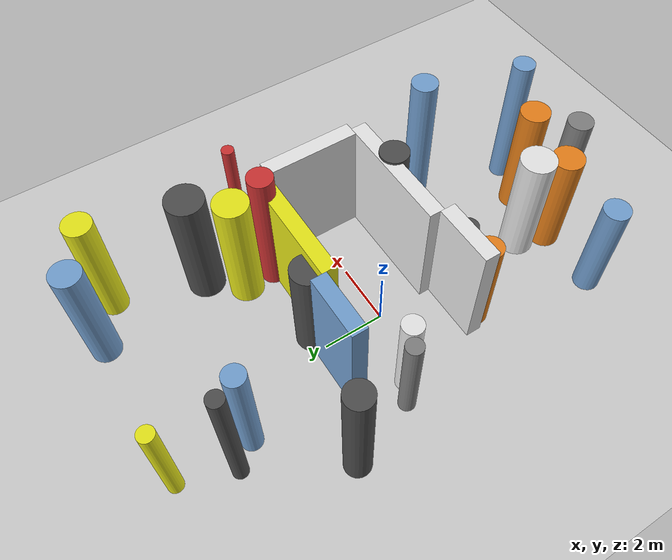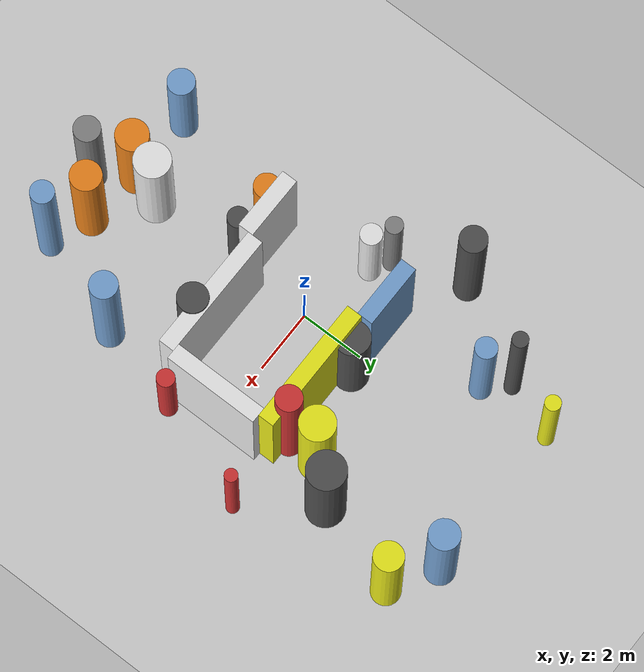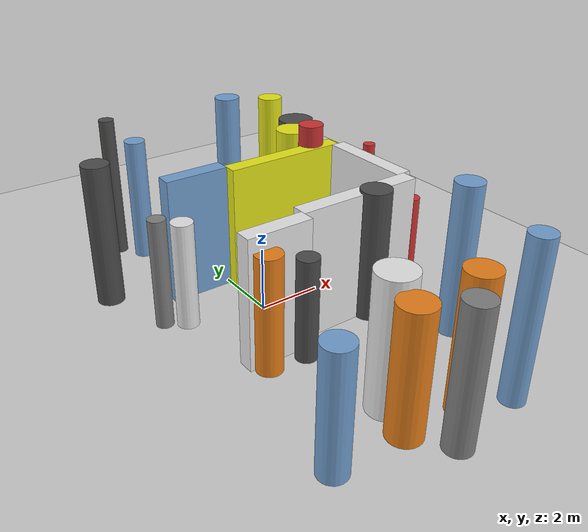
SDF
<?xml version='1.0'?>
<sdf version='1.6'>
  <world name='routeA_rl_v1__dense_recovery__rl_train__cul_de_sac_trap__000019'>
    <!-- Sun light -->
    <light name='sun' type='directional'>
      <cast_shadows>1</cast_shadows>
      <pose>0 0 10 0 0 0</pose>
      <diffuse>0.8 0.8 0.8 1</diffuse>
      <specular>0.2 0.2 0.2 1</specular>
      <attenuation>
        <range>1000</range>
        <constant>0.9</constant>
        <linear>0.01</linear>
        <quadratic>0.001</quadratic>
      </attenuation>
      <direction>-0.5 0.1 -0.9</direction>
    </light>

    <!-- Ground plane -->
    <model name='ground_plane'>
      <static>1</static>
      <link name='link'>
        <collision name='collision'>
          <geometry>
            <plane>
              <normal>0 0 1</normal>
              <size>100 100</size>
            </plane>
          </geometry>
          <surface>
            <contact>
              <collide_bitmask>65535</collide_bitmask>
              <ode/>
            </contact>
            <friction>
              <ode>
                <mu>100</mu>
                <mu2>50</mu2>
              </ode>
              <torsional><ode/></torsional>
            </friction>
            <bounce/>
          </surface>
          <max_contacts>10</max_contacts>
        </collision>
        <visual name='visual'>
          <cast_shadows>0</cast_shadows>
          <geometry>
            <plane>
              <normal>0 0 1</normal>
              <size>100 100</size>
            </plane>
          </geometry>
          <material>
            <script>
              <uri>file://media/materials/scripts/gazebo.material</uri>
              <n>Gazebo/Grey</n>
            </script>
          </material>
        </visual>
      </link>
    </model>

    <!-- Environment -->
    <magnetic_field>6e-06 2.3e-05 -4.2e-05</magnetic_field>
    <atmosphere type='adiabatic'/>
    <physics name='default_physics' default='0' type='ode'>
      <gravity>0 0 -9.8</gravity>
      <max_step_size>0.004</max_step_size>
      <real_time_factor>1</real_time_factor>
      <real_time_update_rate>250</real_time_update_rate>
    </physics>
    <scene>
      <ambient>0.4 0.4 0.4 1</ambient>
      <background>0.7 0.7 0.7 1</background>
      <shadows>1</shadows>
    </scene>
    <wind/>
    <spherical_coordinates>
      <surface_model>EARTH_WGS84</surface_model>
      <latitude_deg>0</latitude_deg>
      <longitude_deg>0</longitude_deg>
      <elevation>0</elevation>
      <heading_deg>0</heading_deg>
    </spherical_coordinates>

    <!-- ============ OBSTACLES (29) ============ -->
    <model name='trap_side_l'>
      <static>1</static>
      <link name='link'>
        <visual name='visual'>
          <geometry>
            <box>
              <size>4.0000 0.5000 4.0000</size>
            </box>
          </geometry>
          <material>
            <script>
              <n>Gazebo/White</n>
              <uri>file://media/materials/scripts/gazebo.material</uri>
            </script>
            <ambient>0.9 0.9 0.9 1</ambient>
          </material>
        </visual>
        <collision name='collision'>
          <geometry>
            <box>
              <size>4.0000 0.5000 4.0000</size>
            </box>
          </geometry>
          <max_contacts>10</max_contacts>
          <surface>
            <contact><ode/></contact>
            <bounce/>
            <friction>
              <ode><mu>1</mu><mu2>1</mu2></ode>
              <torsional><ode/></torsional>
            </friction>
          </surface>
        </collision>
      </link>
      <pose>2.0000 -1.7500 2.0000 0 0 0.0000</pose>
    </model>

    <model name='trap_side_r'>
      <static>1</static>
      <link name='link'>
        <visual name='visual'>
          <geometry>
            <box>
              <size>4.0000 0.5000 4.0000</size>
            </box>
          </geometry>
          <material>
            <script>
              <n>Gazebo/Yellow</n>
              <uri>file://media/materials/scripts/gazebo.material</uri>
            </script>
            <ambient>0.9 0.9 0.1 1</ambient>
          </material>
        </visual>
        <collision name='collision'>
          <geometry>
            <box>
              <size>4.0000 0.5000 4.0000</size>
            </box>
          </geometry>
          <max_contacts>10</max_contacts>
          <surface>
            <contact><ode/></contact>
            <bounce/>
            <friction>
              <ode><mu>1</mu><mu2>1</mu2></ode>
              <torsional><ode/></torsional>
            </friction>
          </surface>
        </collision>
      </link>
      <pose>2.0000 1.7500 2.0000 0 0 0.0000</pose>
    </model>

    <model name='trap_back'>
      <static>1</static>
      <link name='link'>
        <visual name='visual'>
          <geometry>
            <box>
              <size>0.5000 3.0000 4.0000</size>
            </box>
          </geometry>
          <material>
            <script>
              <n>Gazebo/White</n>
              <uri>file://media/materials/scripts/gazebo.material</uri>
            </script>
            <ambient>0.9 0.9 0.9 1</ambient>
          </material>
        </visual>
        <collision name='collision'>
          <geometry>
            <box>
              <size>0.5000 3.0000 4.0000</size>
            </box>
          </geometry>
          <max_contacts>10</max_contacts>
          <surface>
            <contact><ode/></contact>
            <bounce/>
            <friction>
              <ode><mu>1</mu><mu2>1</mu2></ode>
              <torsional><ode/></torsional>
            </friction>
          </surface>
        </collision>
      </link>
      <pose>4.0000 0.0000 2.0000 0 0 0.0000</pose>
    </model>

    <model name='trap_funnel_l'>
      <static>1</static>
      <link name='link'>
        <visual name='visual'>
          <geometry>
            <box>
              <size>2.0000 0.5000 4.0000</size>
            </box>
          </geometry>
          <material>
            <script>
              <n>Gazebo/White</n>
              <uri>file://media/materials/scripts/gazebo.material</uri>
            </script>
            <ambient>0.9 0.9 0.9 1</ambient>
          </material>
        </visual>
        <collision name='collision'>
          <geometry>
            <box>
              <size>2.0000 0.5000 4.0000</size>
            </box>
          </geometry>
          <max_contacts>10</max_contacts>
          <surface>
            <contact><ode/></contact>
            <bounce/>
            <friction>
              <ode><mu>1</mu><mu2>1</mu2></ode>
              <torsional><ode/></torsional>
            </friction>
          </surface>
        </collision>
      </link>
      <pose>-1.0000 -2.1000 2.0000 0 0 0.0000</pose>
    </model>

    <model name='trap_funnel_r'>
      <static>1</static>
      <link name='link'>
        <visual name='visual'>
          <geometry>
            <box>
              <size>2.0000 0.5000 4.0000</size>
            </box>
          </geometry>
          <material>
            <script>
              <n>Gazebo/Blue</n>
              <uri>file://media/materials/scripts/gazebo.material</uri>
            </script>
            <ambient>0.447 0.624 0.812 1</ambient>
          </material>
        </visual>
        <collision name='collision'>
          <geometry>
            <box>
              <size>2.0000 0.5000 4.0000</size>
            </box>
          </geometry>
          <max_contacts>10</max_contacts>
          <surface>
            <contact><ode/></contact>
            <bounce/>
            <friction>
              <ode><mu>1</mu><mu2>1</mu2></ode>
              <torsional><ode/></torsional>
            </friction>
          </surface>
        </collision>
      </link>
      <pose>-1.0000 2.1000 2.0000 0 0 0.0000</pose>
    </model>

    <model name='trap_scatter_0'>
      <static>1</static>
      <link name='link'>
        <visual name='visual'>
          <geometry>
            <cylinder>
              <radius>0.2027</radius>
              <length>3.5060</length>
            </cylinder>
          </geometry>
          <material>
            <script>
              <n>Gazebo/Red</n>
              <uri>file://media/materials/scripts/gazebo.material</uri>
            </script>
            <ambient>0.8 0.2 0.2 1</ambient>
          </material>
        </visual>
        <collision name='collision'>
          <geometry>
            <cylinder>
              <radius>0.2027</radius>
              <length>3.5060</length>
            </cylinder>
          </geometry>
          <max_contacts>10</max_contacts>
          <surface>
            <contact><ode/></contact>
            <bounce/>
            <friction>
              <ode><mu>1</mu><mu2>1</mu2></ode>
              <torsional><ode/></torsional>
            </friction>
          </surface>
        </collision>
      </link>
      <pose>5.7052 1.8714 1.7530 0 0 0.0000</pose>
    </model>

    <model name='trap_scatter_1'>
      <static>1</static>
      <link name='link'>
        <visual name='visual'>
          <geometry>
            <cylinder>
              <radius>0.2437</radius>
              <length>4.7282</length>
            </cylinder>
          </geometry>
          <material>
            <script>
              <n>Gazebo/DarkGrey</n>
              <uri>file://media/materials/scripts/gazebo.material</uri>
            </script>
            <ambient>0.3 0.3 0.3 1</ambient>
          </material>
        </visual>
        <collision name='collision'>
          <geometry>
            <cylinder>
              <radius>0.2437</radius>
              <length>4.7282</length>
            </cylinder>
          </geometry>
          <max_contacts>10</max_contacts>
          <surface>
            <contact><ode/></contact>
            <bounce/>
            <friction>
              <ode><mu>1</mu><mu2>1</mu2></ode>
              <torsional><ode/></torsional>
            </friction>
          </surface>
        </collision>
      </link>
      <pose>-1.9779 5.9690 2.3641 0 0 0.0000</pose>
    </model>

    <model name='trap_scatter_2'>
      <static>1</static>
      <link name='link'>
        <visual name='visual'>
          <geometry>
            <cylinder>
              <radius>0.5408</radius>
              <length>4.2299</length>
            </cylinder>
          </geometry>
          <material>
            <script>
              <n>Gazebo/Yellow</n>
              <uri>file://media/materials/scripts/gazebo.material</uri>
            </script>
            <ambient>0.9 0.9 0.1 1</ambient>
          </material>
        </visual>
        <collision name='collision'>
          <geometry>
            <cylinder>
              <radius>0.5408</radius>
              <length>4.2299</length>
            </cylinder>
          </geometry>
          <max_contacts>10</max_contacts>
          <surface>
            <contact><ode/></contact>
            <bounce/>
            <friction>
              <ode><mu>1</mu><mu2>1</mu2></ode>
              <torsional><ode/></torsional>
            </friction>
          </surface>
        </collision>
      </link>
      <pose>3.2281 2.9561 2.1149 0 0 0.0000</pose>
    </model>

    <model name='trap_scatter_3'>
      <static>1</static>
      <link name='link'>
        <visual name='visual'>
          <geometry>
            <cylinder>
              <radius>0.4136</radius>
              <length>3.5949</length>
            </cylinder>
          </geometry>
          <material>
            <script>
              <n>Gazebo/Blue</n>
              <uri>file://media/materials/scripts/gazebo.material</uri>
            </script>
            <ambient>0.447 0.624 0.812 1</ambient>
          </material>
        </visual>
        <collision name='collision'>
          <geometry>
            <cylinder>
              <radius>0.4136</radius>
              <length>3.5949</length>
            </cylinder>
          </geometry>
          <max_contacts>10</max_contacts>
          <surface>
            <contact><ode/></contact>
            <bounce/>
            <friction>
              <ode><mu>1</mu><mu2>1</mu2></ode>
              <torsional><ode/></torsional>
            </friction>
          </surface>
        </collision>
      </link>
      <pose>-2.4427 -6.3414 1.7974 0 0 0.0000</pose>
    </model>

    <model name='trap_scatter_4'>
      <static>1</static>
      <link name='link'>
        <visual name='visual'>
          <geometry>
            <cylinder>
              <radius>0.4154</radius>
              <length>4.5132</length>
            </cylinder>
          </geometry>
          <material>
            <script>
              <n>Gazebo/DarkGrey</n>
              <uri>file://media/materials/scripts/gazebo.material</uri>
            </script>
            <ambient>0.3 0.3 0.3 1</ambient>
          </material>
        </visual>
        <collision name='collision'>
          <geometry>
            <cylinder>
              <radius>0.4154</radius>
              <length>4.5132</length>
            </cylinder>
          </geometry>
          <max_contacts>10</max_contacts>
          <surface>
            <contact><ode/></contact>
            <bounce/>
            <friction>
              <ode><mu>1</mu><mu2>1</mu2></ode>
              <torsional><ode/></torsional>
            </friction>
          </surface>
        </collision>
      </link>
      <pose>-3.5506 3.1625 2.2566 0 0 0.0000</pose>
    </model>

    <model name='trap_scatter_5'>
      <static>1</static>
      <link name='link'>
        <visual name='visual'>
          <geometry>
            <cylinder>
              <radius>0.5279</radius>
              <length>3.6289</length>
            </cylinder>
          </geometry>
          <material>
            <script>
              <n>Gazebo/DarkGrey</n>
              <uri>file://media/materials/scripts/gazebo.material</uri>
            </script>
            <ambient>0.3 0.3 0.3 1</ambient>
          </material>
        </visual>
        <collision name='collision'>
          <geometry>
            <cylinder>
              <radius>0.5279</radius>
              <length>3.6289</length>
            </cylinder>
          </geometry>
          <max_contacts>10</max_contacts>
          <surface>
            <contact><ode/></contact>
            <bounce/>
            <friction>
              <ode><mu>1</mu><mu2>1</mu2></ode>
              <torsional><ode/></torsional>
            </friction>
          </surface>
        </collision>
      </link>
      <pose>0.5545 2.1157 1.8144 0 0 0.0000</pose>
    </model>

    <model name='trap_scatter_6'>
      <static>1</static>
      <link name='link'>
        <visual name='visual'>
          <geometry>
            <cylinder>
              <radius>0.4757</radius>
              <length>4.0585</length>
            </cylinder>
          </geometry>
          <material>
            <script>
              <n>Gazebo/Orange</n>
              <uri>file://media/materials/scripts/gazebo.material</uri>
            </script>
            <ambient>0.9 0.5 0.1 1</ambient>
          </material>
        </visual>
        <collision name='collision'>
          <geometry>
            <cylinder>
              <radius>0.4757</radius>
              <length>4.0585</length>
            </cylinder>
          </geometry>
          <max_contacts>10</max_contacts>
          <surface>
            <contact><ode/></contact>
            <bounce/>
            <friction>
              <ode><mu>1</mu><mu2>1</mu2></ode>
              <torsional><ode/></torsional>
            </friction>
          </surface>
        </collision>
      </link>
      <pose>1.5078 -6.6034 2.0293 0 0 0.0000</pose>
    </model>

    <model name='trap_scatter_7'>
      <static>1</static>
      <link name='link'>
        <visual name='visual'>
          <geometry>
            <cylinder>
              <radius>0.3265</radius>
              <length>3.1566</length>
            </cylinder>
          </geometry>
          <material>
            <script>
              <n>Gazebo/DarkGrey</n>
              <uri>file://media/materials/scripts/gazebo.material</uri>
            </script>
            <ambient>0.3 0.3 0.3 1</ambient>
          </material>
        </visual>
        <collision name='collision'>
          <geometry>
            <cylinder>
              <radius>0.3265</radius>
              <length>3.1566</length>
            </cylinder>
          </geometry>
          <max_contacts>10</max_contacts>
          <surface>
            <contact><ode/></contact>
            <bounce/>
            <friction>
              <ode><mu>1</mu><mu2>1</mu2></ode>
              <torsional><ode/></torsional>
            </friction>
          </surface>
        </collision>
      </link>
      <pose>-0.3813 -2.6712 1.5783 0 0 0.0000</pose>
    </model>

    <model name='trap_scatter_8'>
      <static>1</static>
      <link name='link'>
        <visual name='visual'>
          <geometry>
            <cylinder>
              <radius>0.3973</radius>
              <length>4.6690</length>
            </cylinder>
          </geometry>
          <material>
            <script>
              <n>Gazebo/Red</n>
              <uri>file://media/materials/scripts/gazebo.material</uri>
            </script>
            <ambient>0.8 0.2 0.2 1</ambient>
          </material>
        </visual>
        <collision name='collision'>
          <geometry>
            <cylinder>
              <radius>0.3973</radius>
              <length>4.6690</length>
            </cylinder>
          </geometry>
          <max_contacts>10</max_contacts>
          <surface>
            <contact><ode/></contact>
            <bounce/>
            <friction>
              <ode><mu>1</mu><mu2>1</mu2></ode>
              <torsional><ode/></torsional>
            </friction>
          </surface>
        </collision>
      </link>
      <pose>3.2460 1.9768 2.3345 0 0 0.0000</pose>
    </model>

    <model name='trap_scatter_9'>
      <static>1</static>
      <link name='link'>
        <visual name='visual'>
          <geometry>
            <cylinder>
              <radius>0.3317</radius>
              <length>4.0984</length>
            </cylinder>
          </geometry>
          <material>
            <script>
              <n>Gazebo/Blue</n>
              <uri>file://media/materials/scripts/gazebo.material</uri>
            </script>
            <ambient>0.447 0.624 0.812 1</ambient>
          </material>
        </visual>
        <collision name='collision'>
          <geometry>
            <cylinder>
              <radius>0.3317</radius>
              <length>4.0984</length>
            </cylinder>
          </geometry>
          <max_contacts>10</max_contacts>
          <surface>
            <contact><ode/></contact>
            <bounce/>
            <friction>
              <ode><mu>1</mu><mu2>1</mu2></ode>
              <torsional><ode/></torsional>
            </friction>
          </surface>
        </collision>
      </link>
      <pose>-1.3762 5.2822 2.0492 0 0 0.0000</pose>
    </model>

    <model name='trap_scatter_11'>
      <static>1</static>
      <link name='link'>
        <visual name='visual'>
          <geometry>
            <cylinder>
              <radius>0.3904</radius>
              <length>3.5549</length>
            </cylinder>
          </geometry>
          <material>
            <script>
              <n>Gazebo/Orange</n>
              <uri>file://media/materials/scripts/gazebo.material</uri>
            </script>
            <ambient>0.9 0.5 0.1 1</ambient>
          </material>
        </visual>
        <collision name='collision'>
          <geometry>
            <cylinder>
              <radius>0.3904</radius>
              <length>3.5549</length>
            </cylinder>
          </geometry>
          <max_contacts>10</max_contacts>
          <surface>
            <contact><ode/></contact>
            <bounce/>
            <friction>
              <ode><mu>1</mu><mu2>1</mu2></ode>
              <torsional><ode/></torsional>
            </friction>
          </surface>
        </collision>
      </link>
      <pose>-1.5022 -2.5234 1.7774 0 0 0.0000</pose>
    </model>

    <model name='trap_scatter_12'>
      <static>1</static>
      <link name='link'>
        <visual name='visual'>
          <geometry>
            <cylinder>
              <radius>0.2673</radius>
              <length>3.4469</length>
            </cylinder>
          </geometry>
          <material>
            <script>
              <n>Gazebo/Grey</n>
              <uri>file://media/materials/scripts/gazebo.material</uri>
            </script>
            <ambient>0.5 0.5 0.5 1</ambient>
          </material>
        </visual>
        <collision name='collision'>
          <geometry>
            <cylinder>
              <radius>0.2673</radius>
              <length>3.4469</length>
            </cylinder>
          </geometry>
          <max_contacts>10</max_contacts>
          <surface>
            <contact><ode/></contact>
            <bounce/>
            <friction>
              <ode><mu>1</mu><mu2>1</mu2></ode>
              <torsional><ode/></torsional>
            </friction>
          </surface>
        </collision>
      </link>
      <pose>-2.8117 0.9881 1.7235 0 0 0.0000</pose>
    </model>

    <model name='trap_scatter_13'>
      <static>1</static>
      <link name='link'>
        <visual name='visual'>
          <geometry>
            <cylinder>
              <radius>0.5585</radius>
              <length>3.9820</length>
            </cylinder>
          </geometry>
          <material>
            <script>
              <n>Gazebo/White</n>
              <uri>file://media/materials/scripts/gazebo.material</uri>
            </script>
            <ambient>0.9 0.9 0.9 1</ambient>
          </material>
        </visual>
        <collision name='collision'>
          <geometry>
            <cylinder>
              <radius>0.5585</radius>
              <length>3.9820</length>
            </cylinder>
          </geometry>
          <max_contacts>10</max_contacts>
          <surface>
            <contact><ode/></contact>
            <bounce/>
            <friction>
              <ode><mu>1</mu><mu2>1</mu2></ode>
              <torsional><ode/></torsional>
            </friction>
          </surface>
        </collision>
      </link>
      <pose>-0.0108 -5.4386 1.9910 0 0 0.0000</pose>
    </model>

    <model name='trap_scatter_14'>
      <static>1</static>
      <link name='link'>
        <visual name='visual'>
          <geometry>
            <cylinder>
              <radius>0.2411</radius>
              <length>3.6494</length>
            </cylinder>
          </geometry>
          <material>
            <script>
              <n>Gazebo/Yellow</n>
              <uri>file://media/materials/scripts/gazebo.material</uri>
            </script>
            <ambient>0.9 0.9 0.1 1</ambient>
          </material>
        </visual>
        <collision name='collision'>
          <geometry>
            <cylinder>
              <radius>0.2411</radius>
              <length>3.6494</length>
            </cylinder>
          </geometry>
          <max_contacts>10</max_contacts>
          <surface>
            <contact><ode/></contact>
            <bounce/>
            <friction>
              <ode><mu>1</mu><mu2>1</mu2></ode>
              <torsional><ode/></torsional>
            </friction>
          </surface>
        </collision>
      </link>
      <pose>-1.3672 7.6309 1.8247 0 0 0.0000</pose>
    </model>

    <model name='trap_scatter_15'>
      <static>1</static>
      <link name='link'>
        <visual name='visual'>
          <geometry>
            <cylinder>
              <radius>0.4226</radius>
              <length>4.6918</length>
            </cylinder>
          </geometry>
          <material>
            <script>
              <n>Gazebo/Blue</n>
              <uri>file://media/materials/scripts/gazebo.material</uri>
            </script>
            <ambient>0.447 0.624 0.812 1</ambient>
          </material>
        </visual>
        <collision name='collision'>
          <geometry>
            <cylinder>
              <radius>0.4226</radius>
              <length>4.6918</length>
            </cylinder>
          </geometry>
          <max_contacts>10</max_contacts>
          <surface>
            <contact><ode/></contact>
            <bounce/>
            <friction>
              <ode><mu>1</mu><mu2>1</mu2></ode>
              <torsional><ode/></torsional>
            </friction>
          </surface>
        </collision>
      </link>
      <pose>3.8427 -4.0605 2.3459 0 0 0.0000</pose>
    </model>

    <model name='trap_scatter_16'>
      <static>1</static>
      <link name='link'>
        <visual name='visual'>
          <geometry>
            <cylinder>
              <radius>0.3583</radius>
              <length>4.7785</length>
            </cylinder>
          </geometry>
          <material>
            <script>
              <n>Gazebo/Blue</n>
              <uri>file://media/materials/scripts/gazebo.material</uri>
            </script>
            <ambient>0.447 0.624 0.812 1</ambient>
          </material>
        </visual>
        <collision name='collision'>
          <geometry>
            <cylinder>
              <radius>0.3583</radius>
              <length>4.7785</length>
            </cylinder>
          </geometry>
          <max_contacts>10</max_contacts>
          <surface>
            <contact><ode/></contact>
            <bounce/>
            <friction>
              <ode><mu>1</mu><mu2>1</mu2></ode>
              <torsional><ode/></torsional>
            </friction>
          </surface>
        </collision>
      </link>
      <pose>2.8009 -7.0752 2.3892 0 0 0.0000</pose>
    </model>

    <model name='trap_scatter_17'>
      <static>1</static>
      <link name='link'>
        <visual name='visual'>
          <geometry>
            <cylinder>
              <radius>0.4993</radius>
              <length>3.7546</length>
            </cylinder>
          </geometry>
          <material>
            <script>
              <n>Gazebo/Orange</n>
              <uri>file://media/materials/scripts/gazebo.material</uri>
            </script>
            <ambient>0.9 0.5 0.1 1</ambient>
          </material>
        </visual>
        <collision name='collision'>
          <geometry>
            <cylinder>
              <radius>0.4993</radius>
              <length>3.7546</length>
            </cylinder>
          </geometry>
          <max_contacts>10</max_contacts>
          <surface>
            <contact><ode/></contact>
            <bounce/>
            <friction>
              <ode><mu>1</mu><mu2>1</mu2></ode>
              <torsional><ode/></torsional>
            </friction>
          </surface>
        </collision>
      </link>
      <pose>-0.3056 -6.4061 1.8773 0 0 0.0000</pose>
    </model>

    <model name='trap_scatter_18'>
      <static>1</static>
      <link name='link'>
        <visual name='visual'>
          <geometry>
            <cylinder>
              <radius>0.4463</radius>
              <length>4.0694</length>
            </cylinder>
          </geometry>
          <material>
            <script>
              <n>Gazebo/Yellow</n>
              <uri>file://media/materials/scripts/gazebo.material</uri>
            </script>
            <ambient>0.9 0.9 0.1 1</ambient>
          </material>
        </visual>
        <collision name='collision'>
          <geometry>
            <cylinder>
              <radius>0.4463</radius>
              <length>4.0694</length>
            </cylinder>
          </geometry>
          <max_contacts>10</max_contacts>
          <surface>
            <contact><ode/></contact>
            <bounce/>
            <friction>
              <ode><mu>1</mu><mu2>1</mu2></ode>
              <torsional><ode/></torsional>
            </friction>
          </surface>
        </collision>
      </link>
      <pose>4.9657 6.7685 2.0347 0 0 0.0000</pose>
    </model>

    <model name='trap_scatter_19'>
      <static>1</static>
      <link name='link'>
        <visual name='visual'>
          <geometry>
            <cylinder>
              <radius>0.4658</radius>
              <length>4.0777</length>
            </cylinder>
          </geometry>
          <material>
            <script>
              <n>Gazebo/DarkGrey</n>
              <uri>file://media/materials/scripts/gazebo.material</uri>
            </script>
            <ambient>0.3 0.3 0.3 1</ambient>
          </material>
        </visual>
        <collision name='collision'>
          <geometry>
            <cylinder>
              <radius>0.4658</radius>
              <length>4.0777</length>
            </cylinder>
          </geometry>
          <max_contacts>10</max_contacts>
          <surface>
            <contact><ode/></contact>
            <bounce/>
            <friction>
              <ode><mu>1</mu><mu2>1</mu2></ode>
              <torsional><ode/></torsional>
            </friction>
          </surface>
        </collision>
      </link>
      <pose>2.4693 -2.0181 2.0389 0 0 0.0000</pose>
    </model>

    <model name='trap_scatter_20'>
      <static>1</static>
      <link name='link'>
        <visual name='visual'>
          <geometry>
            <cylinder>
              <radius>0.5930</radius>
              <length>4.1331</length>
            </cylinder>
          </geometry>
          <material>
            <script>
              <n>Gazebo/DarkGrey</n>
              <uri>file://media/materials/scripts/gazebo.material</uri>
            </script>
            <ambient>0.3 0.3 0.3 1</ambient>
          </material>
        </visual>
        <collision name='collision'>
          <geometry>
            <cylinder>
              <radius>0.5930</radius>
              <length>4.1331</length>
            </cylinder>
          </geometry>
          <max_contacts>10</max_contacts>
          <surface>
            <contact><ode/></contact>
            <bounce/>
            <friction>
              <ode><mu>1</mu><mu2>1</mu2></ode>
              <torsional><ode/></torsional>
            </friction>
          </surface>
        </collision>
      </link>
      <pose>4.1122 3.9548 2.0665 0 0 0.0000</pose>
    </model>

    <model name='trap_scatter_21'>
      <static>1</static>
      <link name='link'>
        <visual name='visual'>
          <geometry>
            <cylinder>
              <radius>0.4033</radius>
              <length>4.1119</length>
            </cylinder>
          </geometry>
          <material>
            <script>
              <n>Gazebo/Grey</n>
              <uri>file://media/materials/scripts/gazebo.material</uri>
            </script>
            <ambient>0.5 0.5 0.5 1</ambient>
          </material>
        </visual>
        <collision name='collision'>
          <geometry>
            <cylinder>
              <radius>0.4033</radius>
              <length>4.1119</length>
            </cylinder>
          </geometry>
          <max_contacts>10</max_contacts>
          <surface>
            <contact><ode/></contact>
            <bounce/>
            <friction>
              <ode><mu>1</mu><mu2>1</mu2></ode>
              <torsional><ode/></torsional>
            </friction>
          </surface>
        </collision>
      </link>
      <pose>0.4213 -7.4298 2.0560 0 0 0.0000</pose>
    </model>

    <model name='trap_scatter_22'>
      <static>1</static>
      <link name='link'>
        <visual name='visual'>
          <geometry>
            <cylinder>
              <radius>0.4620</radius>
              <length>4.1031</length>
            </cylinder>
          </geometry>
          <material>
            <script>
              <n>Gazebo/Blue</n>
              <uri>file://media/materials/scripts/gazebo.material</uri>
            </script>
            <ambient>0.447 0.624 0.812 1</ambient>
          </material>
        </visual>
        <collision name='collision'>
          <geometry>
            <cylinder>
              <radius>0.4620</radius>
              <length>4.1031</length>
            </cylinder>
          </geometry>
          <max_contacts>10</max_contacts>
          <surface>
            <contact><ode/></contact>
            <bounce/>
            <friction>
              <ode><mu>1</mu><mu2>1</mu2></ode>
              <torsional><ode/></torsional>
            </friction>
          </surface>
        </collision>
      </link>
      <pose>3.5537 7.6031 2.0515 0 0 0.0000</pose>
    </model>

    <model name='trap_scatter_23'>
      <static>1</static>
      <link name='link'>
        <visual name='visual'>
          <geometry>
            <cylinder>
              <radius>0.2739</radius>
              <length>3.0274</length>
            </cylinder>
          </geometry>
          <material>
            <script>
              <n>Gazebo/Red</n>
              <uri>file://media/materials/scripts/gazebo.material</uri>
            </script>
            <ambient>0.8 0.2 0.2 1</ambient>
          </material>
        </visual>
        <collision name='collision'>
          <geometry>
            <cylinder>
              <radius>0.2739</radius>
              <length>3.0274</length>
            </cylinder>
          </geometry>
          <max_contacts>10</max_contacts>
          <surface>
            <contact><ode/></contact>
            <bounce/>
            <friction>
              <ode><mu>1</mu><mu2>1</mu2></ode>
              <torsional><ode/></torsional>
            </friction>
          </surface>
        </collision>
      </link>
      <pose>4.5314 -1.3799 1.5137 0 0 0.0000</pose>
    </model>

    <model name='trap_scatter_24'>
      <static>1</static>
      <link name='link'>
        <visual name='visual'>
          <geometry>
            <cylinder>
              <radius>0.3298</radius>
              <length>3.3396</length>
            </cylinder>
          </geometry>
          <material>
            <script>
              <n>Gazebo/White</n>
              <uri>file://media/materials/scripts/gazebo.material</uri>
            </script>
            <ambient>0.9 0.9 0.9 1</ambient>
          </material>
        </visual>
        <collision name='collision'>
          <geometry>
            <cylinder>
              <radius>0.3298</radius>
              <length>3.3396</length>
            </cylinder>
          </geometry>
          <max_contacts>10</max_contacts>
          <surface>
            <contact><ode/></contact>
            <bounce/>
            <friction>
              <ode><mu>1</mu><mu2>1</mu2></ode>
              <torsional><ode/></torsional>
            </friction>
          </surface>
        </collision>
      </link>
      <pose>-2.2332 0.6189 1.6698 0 0 0.0000</pose>
    </model>

    <!-- GUI camera -->
    <gui fullscreen='0'>
      <camera name='user_camera'>
        <pose>-15 0 18 0 0.85 0.15</pose>
        <view_controller>orbit</view_controller>
        <projection_type>perspective</projection_type>
      </camera>
    </gui>
  </world>
</sdf>
